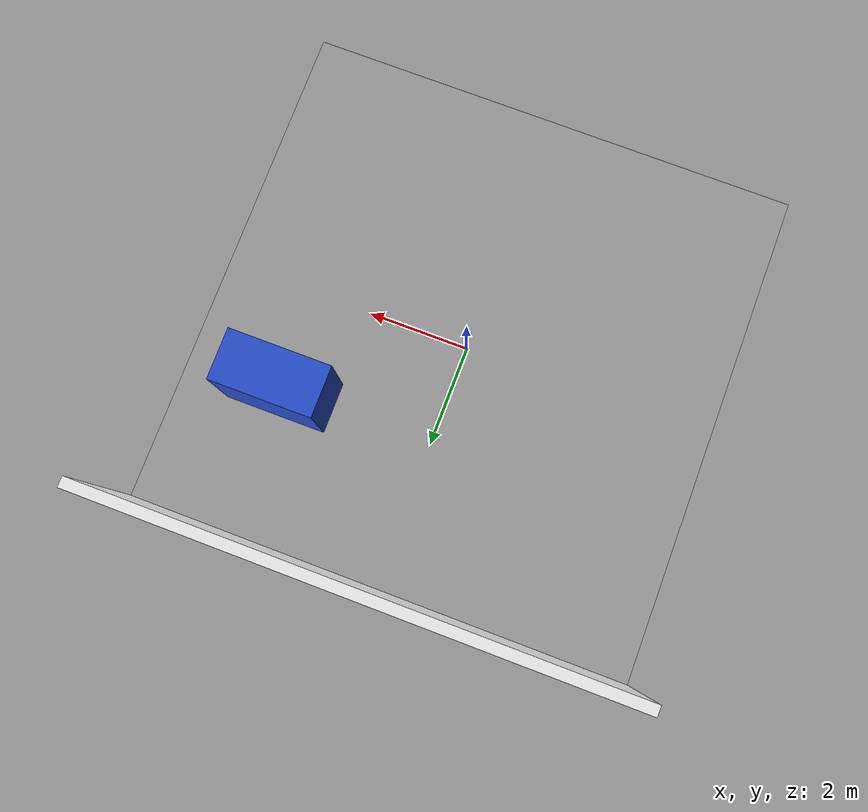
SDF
<?xml version="1.0" ?>
<sdf version="1.6">
  <world name="industrial">

    <!-- Luz ambiental -->
    <include>
      <uri>model://sun</uri>
    </include>

    <!-- Suelo industrial -->
    <model name="industrial_floor">
      <static>true</static>
      <pose>0 0 -0.05 0 0 0</pose>
      <link name="floor_link">
        <collision name="floor_collision">
          <geometry>
            <box>
              <size>10 10 0.1</size>
            </box>
          </geometry>
        </collision>
        <visual name="floor_visual">
          <geometry>
            <box>
              <size>10 10 0.1</size>
            </box>
          </geometry>
          <material>
            <script>
              <uri>file://media/materials/scripts/gazebo.material</uri>
              <name>Gazebo/Grey</name>
            </script>
            <ambient>0.3 0.3 0.3 1</ambient>
          </material>
        </visual>
      </link>
    </model>

    <!-- Luminarias industriales -->
    <light type="directional" name="main_light">
      <cast_shadows>true</cast_shadows>
      <pose>0 0 15 0 -0.785 0</pose>
      <diffuse>0.9 0.9 0.8 1</diffuse>
      <specular>0.3 0.3 0.3 1</specular>
      <attenuation>
        <range>100</range>
        <constant>0.9</constant>
        <linear>0.05</linear>
        <quadratic>0.01</quadratic>
      </attenuation>
      <direction>-0.3 0.3 -1</direction>
    </light>

    <!-- Paredes del entorno industrial -->
    <model name="back_wall">
      <static>true</static>
      <pose>0 5 2 0 0 0</pose>
      <link name="back_wall_link">
        <collision name="back_wall_collision">
          <geometry>
            <box>
              <size>10 0.2 4</size>
            </box>
          </geometry>
        </collision>
        <visual name="back_wall_visual">
          <geometry>
            <box>
              <size>10 0.2 4</size>
            </box>
          </geometry>
          <material>
            <script>
              <uri>file://media/materials/scripts/gazebo.material</uri>
              <name>Gazebo/White</name>
            </script>
          </material>
        </visual>
      </link>
    </model>

    <!-- Estantes o racks industriales -->
    <model name="storage_rack">
      <static>true</static>
      <pose>3 2 1 0 0 0</pose>
      <link name="rack_link">
        <collision name="rack_collision">
          <geometry>
            <box>
              <size>2 1 2</size>
            </box>
          </geometry>
        </collision>
        <visual name="rack_visual">
          <geometry>
            <box>
              <size>2 1 2</size>
            </box>
          </geometry>
          <material>
            <script>
              <uri>file://media/materials/scripts/gazebo.material</uri>
              <name>Gazebo/Blue</name>
            </script>
          </material>
        </visual>
      </link>
    </model>

    <!-- Propiedades de física industrial -->
    <physics name="industrial_physics" default="0" type="ode">
      <max_step_size>0.001</max_step_size>
      <real_time_factor>1.0</real_time_factor>
      <real_time_update_rate>1000</real_time_update_rate>
      <gravity>0 0 -9.81</gravity>
      <ode>
        <solver>
          <type>quick</type>
          <iters>100</iters>
          <sor>1.4</sor>
        </solver>
        <constraints>
          <cfm>0.0</cfm>
          <erp>0.2</erp>
          <contact_max_correcting_vel>100.0</contact_max_correcting_vel>
          <contact_surface_layer>0.001</contact_surface_layer>
        </constraints>
      </ode>
    </physics>

    <!-- Escena con iluminación industrial -->
    <scene>
      <ambient>0.6 0.6 0.6 1</ambient>
      <background>0.85 0.85 0.9 1</background>
      <shadows>true</shadows>
      <grid>true</grid>
      <grid>20</grid>
      <origin_visual>true</origin_visual>
    </scene>

  </world>
</sdf>
